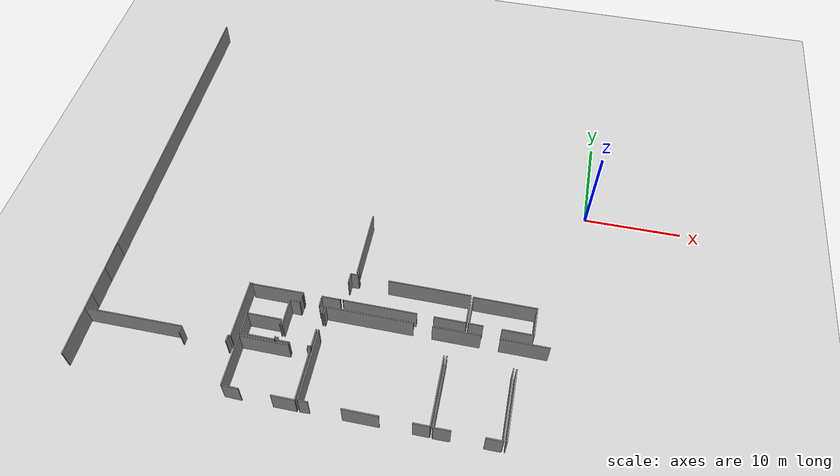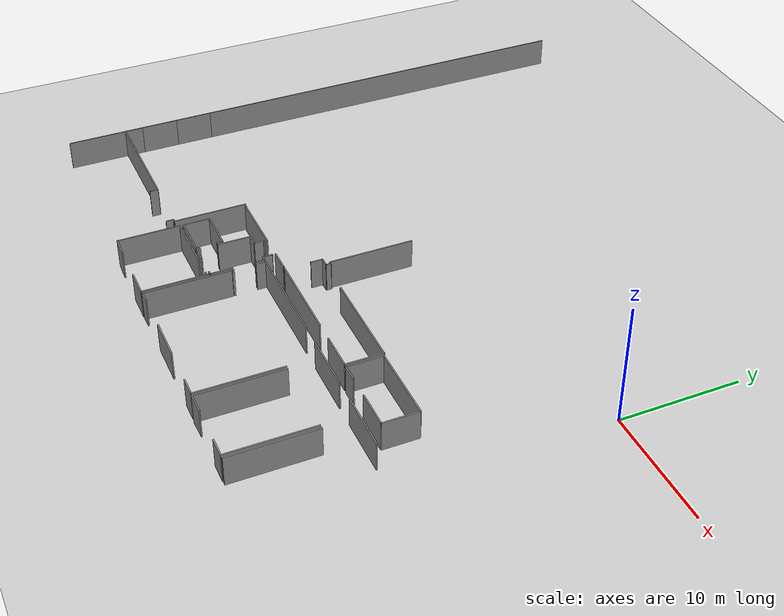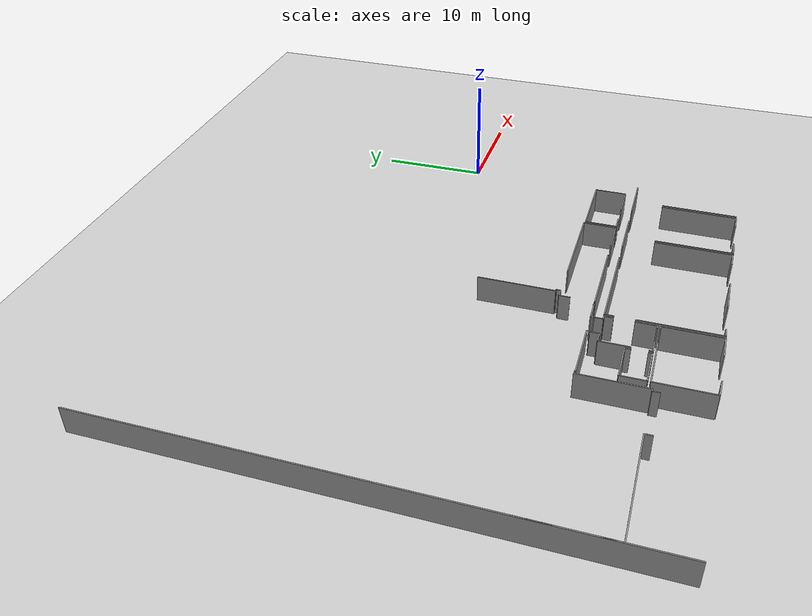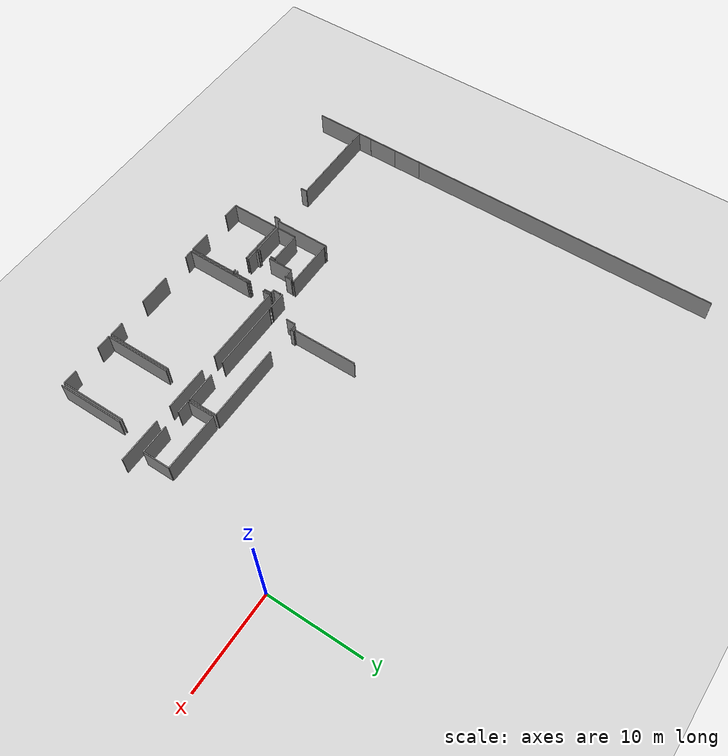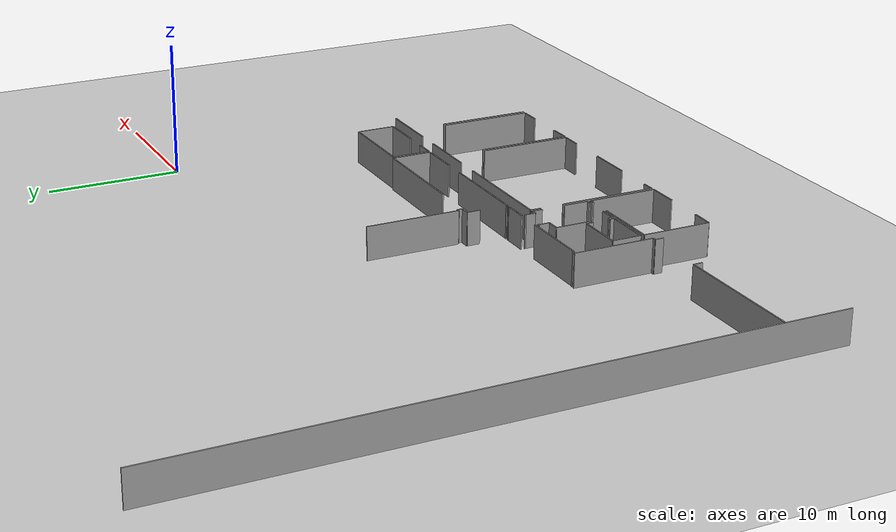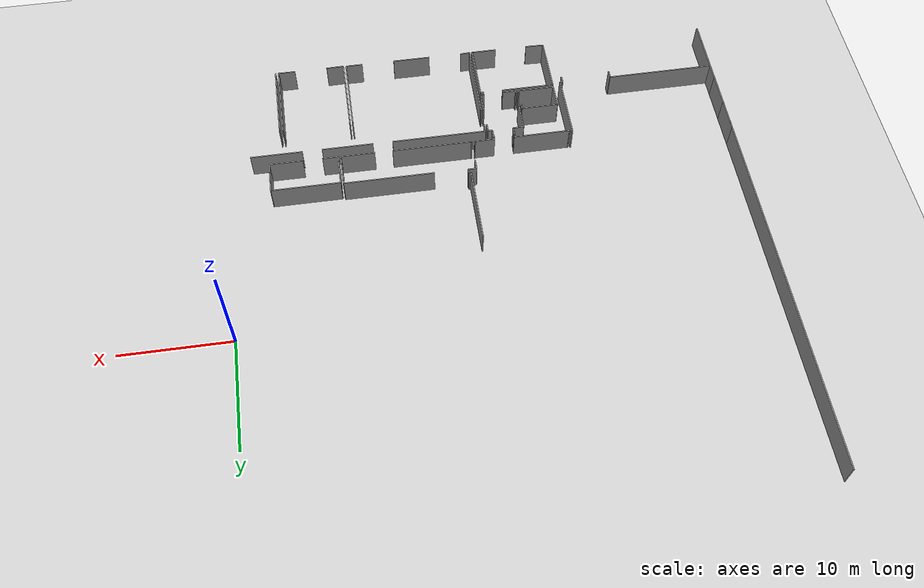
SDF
<sdf version="1.6">
 <world name="default">
  <model name="ground_plane">
   <static>1</static>
   <link name="link">
    <collision name="collision">
     <geometry><plane><normal>0 0 1</normal><size>100 100</size></plane></geometry>
     <surface><friction><ode><mu>100</mu><mu2>50</mu2></ode></friction></surface>
    </collision>
    <visual name="visual">
     <cast_shadows>0</cast_shadows>
     <geometry><plane><normal>0 0 1</normal><size>100 100</size></plane></geometry>
     <material>
      <script><uri>file://media/materials/scripts/gazebo.material</uri><name>Gazebo/Grey</name></script>
     </material>
    </visual>
   </link>
  </model>
  <model name="50045232">
   <static>1</static>
   <link name="Wall_110">
    <collision name="Wall_110_Collision">
     <geometry><box><size>1.52405143674 0.1 2.5</size></box></geometry>
     <pose>0.762025718368 0 1.25 0 0 0</pose>
    </collision>
    <visual name="Wall_110_Visual">
     <pose>0.762025718368 0 1.25 0 0 0</pose>
     <geometry><box><size>1.52405143674 0.1 2.5</size></box></geometry>
     <material>
      <script><uri>file://media/materials/scripts/gazebo.material</uri><name>Gazebo/Grey</name></script>
      <ambient>1 1 1 1</ambient>
     </material>
    </visual>
    <pose>0.00139704715034 -41.498904588 0 0 0 1.57079632679</pose>
   </link>
   <link name="Wall_111">
    <collision name="Wall_111_Collision">
     <geometry><box><size>3.1169391967 0.1 2.5</size></box></geometry>
     <pose>1.55846959835 0 1.25 0 0 0</pose>
    </collision>
    <visual name="Wall_111_Visual">
     <pose>1.55846959835 0 1.25 0 0 0</pose>
     <geometry><box><size>3.1169391967 0.1 2.5</size></box></geometry>
     <material>
      <script><uri>file://media/materials/scripts/gazebo.material</uri><name>Gazebo/Grey</name></script>
      <ambient>1 1 1 1</ambient>
     </material>
    </visual>
    <pose>0.00139704715034 -36.871376409 0 0 0 1.57079632679</pose>
   </link>
   <link name="Wall_128">
    <collision name="Wall_128_Collision">
     <geometry><box><size>6.02990950945 0.1 2.5</size></box></geometry>
     <pose>3.01495475472 0 1.25 0 0 0</pose>
    </collision>
    <visual name="Wall_128_Visual">
     <pose>3.01495475472 0 1.25 0 0 0</pose>
     <geometry><box><size>6.02990950945 0.1 2.5</size></box></geometry>
     <material>
      <script><uri>file://media/materials/scripts/gazebo.material</uri><name>Gazebo/Grey</name></script>
      <ambient>1 1 1 1</ambient>
     </material>
    </visual>
    <pose>14.7582790919 -35.4800444515 0 0 0 -1.57079632679</pose>
   </link>
   <link name="Wall_129">
    <collision name="Wall_129_Collision">
     <geometry><box><size>0.256421654231 0.1 2.5</size></box></geometry>
     <pose>0.128210827115 0 1.25 0 0 0</pose>
    </collision>
    <visual name="Wall_129_Visual">
     <pose>0.128210827115 0 1.25 0 0 0</pose>
     <geometry><box><size>0.256421654231 0.1 2.5</size></box></geometry>
     <material>
      <script><uri>file://media/materials/scripts/gazebo.material</uri><name>Gazebo/Grey</name></script>
      <ambient>1 1 1 1</ambient>
     </material>
    </visual>
    <pose>14.7582790919 -41.5099539609 0 0 0 3.14159265359</pose>
   </link>
   <link name="Wall_130">
    <collision name="Wall_130_Collision">
     <geometry><box><size>0.640609620575 0.1 2.5</size></box></geometry>
     <pose>0.320304810287 0 1.25 0 0 0</pose>
    </collision>
    <visual name="Wall_130_Visual">
     <pose>0.320304810287 0 1.25 0 0 0</pose>
     <geometry><box><size>0.640609620575 0.1 2.5</size></box></geometry>
     <material>
      <script><uri>file://media/materials/scripts/gazebo.material</uri><name>Gazebo/Grey</name></script>
      <ambient>1 1 1 1</ambient>
     </material>
    </visual>
    <pose>14.5018574377 -41.5099539609 0 0 0 -1.57079632679</pose>
   </link>
   <link name="Wall_131">
    <collision name="Wall_131_Collision">
     <geometry><box><size>0.686331163677 0.1 2.5</size></box></geometry>
     <pose>0.343165581838 0 1.25 0 0 0</pose>
    </collision>
    <visual name="Wall_131_Visual">
     <pose>0.343165581838 0 1.25 0 0 0</pose>
     <geometry><box><size>0.686331163677 0.1 2.5</size></box></geometry>
     <material>
      <script><uri>file://media/materials/scripts/gazebo.material</uri><name>Gazebo/Grey</name></script>
      <ambient>1 1 1 1</ambient>
     </material>
    </visual>
    <pose>9.8716621686 -42.1505635815 0 0 0 1.57079632679</pose>
   </link>
   <link name="Wall_132">
    <collision name="Wall_132_Collision">
     <geometry><box><size>9.87032601929 0.1 2.5</size></box></geometry>
     <pose>4.93516300964 0 1.25 0 0 0</pose>
    </collision>
    <visual name="Wall_132_Visual">
     <pose>4.93516300964 0 1.25 0 0 0</pose>
     <geometry><box><size>9.87032601929 0.1 2.5</size></box></geometry>
     <material>
      <script><uri>file://media/materials/scripts/gazebo.material</uri><name>Gazebo/Grey</name></script>
      <ambient>1 1 1 1</ambient>
     </material>
    </visual>
    <pose>9.8716621686 -41.4642324178 0 0 0 -3.13807987788</pose>
   </link>
   <link name="Wall_133">
    <collision name="Wall_133_Collision">
     <geometry><box><size>0.0989363391014 0.1 2.5</size></box></geometry>
     <pose>0.0494681695507 0 1.25 0 0 0</pose>
    </collision>
    <visual name="Wall_133_Visual">
     <pose>0.0494681695507 0 1.25 0 0 0</pose>
     <geometry><box><size>0.0989363391014 0.1 2.5</size></box></geometry>
     <material>
      <script><uri>file://media/materials/scripts/gazebo.material</uri><name>Gazebo/Grey</name></script>
      <ambient>1 1 1 1</ambient>
     </material>
    </visual>
    <pose>15.0116526433 -35.5975234164 0 0 0 1.57079632679</pose>
   </link>
   <link name="Wall_140">
    <collision name="Wall_140_Collision">
     <geometry><box><size>0.0863629147484 0.1 2.5</size></box></geometry>
     <pose>0.0431814573742 0 1.25 0 0 0</pose>
    </collision>
    <visual name="Wall_140_Visual">
     <pose>0.0431814573742 0 1.25 0 0 0</pose>
     <geometry><box><size>0.0863629147484 0.1 2.5</size></box></geometry>
     <material>
      <script><uri>file://media/materials/scripts/gazebo.material</uri><name>Gazebo/Grey</name></script>
      <ambient>1 1 1 1</ambient>
     </material>
    </visual>
    <pose>23.8978885537 -35.494014923 0 0 0 -1.57079632679</pose>
   </link>
   <link name="Wall_141">
    <collision name="Wall_141_Collision">
     <geometry><box><size>1.85350055564 0.1 2.5</size></box></geometry>
     <pose>0.926750277822 0 1.25 0 0 0</pose>
    </collision>
    <visual name="Wall_141_Visual">
     <pose>0.926750277822 0 1.25 0 0 0</pose>
     <geometry><box><size>1.85350055564 0.1 2.5</size></box></geometry>
     <material>
      <script><uri>file://media/materials/scripts/gazebo.material</uri><name>Gazebo/Grey</name></script>
      <ambient>1 1 1 1</ambient>
     </material>
    </visual>
    <pose>23.8978885537 -35.5803778378 0 0 0 3.14159265359</pose>
   </link>
   <link name="Wall_142">
    <collision name="Wall_142_Collision">
     <geometry><box><size>5.21101407753 0.1 2.5</size></box></geometry>
     <pose>2.60550703877 0 1.25 0 0 0</pose>
    </collision>
    <visual name="Wall_142_Visual">
     <pose>2.60550703877 0 1.25 0 0 0</pose>
     <geometry><box><size>5.21101407753 0.1 2.5</size></box></geometry>
     <material>
      <script><uri>file://media/materials/scripts/gazebo.material</uri><name>Gazebo/Grey</name></script>
      <ambient>1 1 1 1</ambient>
     </material>
    </visual>
    <pose>20.222638514 -35.5803778378 0 0 0 -3.13830239005</pose>
   </link>
   <link name="Wall_192">
    <collision name="Wall_192_Collision">
     <geometry><box><size>0.326655024607 0.1 2.5</size></box></geometry>
     <pose>0.163327512304 0 1.25 0 0 0</pose>
    </collision>
    <visual name="Wall_192_Visual">
     <pose>0.163327512304 0 1.25 0 0 0</pose>
     <geometry><box><size>0.326655024607 0.1 2.5</size></box></geometry>
     <material>
      <script><uri>file://media/materials/scripts/gazebo.material</uri><name>Gazebo/Grey</name></script>
      <ambient>1 1 1 1</ambient>
     </material>
    </visual>
    <pose>19.1518653755 -41.0429591999 0 0 0 1.57079632679</pose>
   </link>
   <link name="Wall_193">
    <collision name="Wall_193_Collision">
     <geometry><box><size>2.70125416733 0.1 2.5</size></box></geometry>
     <pose>1.35062708366 0 1.25 0 0 0</pose>
    </collision>
    <visual name="Wall_193_Visual">
     <pose>1.35062708366 0 1.25 0 0 0</pose>
     <geometry><box><size>2.70125416733 0.1 2.5</size></box></geometry>
     <material>
      <script><uri>file://media/materials/scripts/gazebo.material</uri><name>Gazebo/Grey</name></script>
      <ambient>1 1 1 1</ambient>
     </material>
    </visual>
    <pose>19.1518653755 -39.3365296079 0 0 0 1.57079632679</pose>
   </link>
   <link name="Wall_194">
    <collision name="Wall_194_Collision">
     <geometry><box><size>0.965740593745 0.1 2.5</size></box></geometry>
     <pose>0.482870296873 0 1.25 0 0 0</pose>
    </collision>
    <visual name="Wall_194_Visual">
     <pose>0.482870296873 0 1.25 0 0 0</pose>
     <geometry><box><size>0.965740593745 0.1 2.5</size></box></geometry>
     <material>
      <script><uri>file://media/materials/scripts/gazebo.material</uri><name>Gazebo/Grey</name></script>
      <ambient>1 1 1 1</ambient>
     </material>
    </visual>
    <pose>19.1518653755 -36.6352754405 0 0 0 0.0</pose>
   </link>
   <link name="Wall_195">
    <collision name="Wall_195_Collision">
     <geometry><box><size>0.784251468487 0.1 2.5</size></box></geometry>
     <pose>0.392125734244 0 1.25 0 0 0</pose>
    </collision>
    <visual name="Wall_195_Visual">
     <pose>0.392125734244 0 1.25 0 0 0</pose>
     <geometry><box><size>0.784251468487 0.1 2.5</size></box></geometry>
     <material>
      <script><uri>file://media/materials/scripts/gazebo.material</uri><name>Gazebo/Grey</name></script>
      <ambient>1 1 1 1</ambient>
     </material>
    </visual>
    <pose>20.1176059692 -36.6352754405 0 0 0 1.57079632679</pose>
   </link>
   <link name="Wall_196">
    <collision name="Wall_196_Collision">
     <geometry><box><size>0.108969677727 0.1 2.5</size></box></geometry>
     <pose>0.0544848388633 0 1.25 0 0 0</pose>
    </collision>
    <visual name="Wall_196_Visual">
     <pose>0.0544848388633 0 1.25 0 0 0</pose>
     <geometry><box><size>0.108969677727 0.1 2.5</size></box></geometry>
     <material>
      <script><uri>file://media/materials/scripts/gazebo.material</uri><name>Gazebo/Grey</name></script>
      <ambient>1 1 1 1</ambient>
     </material>
    </visual>
    <pose>20.1176059692 -35.8510239721 0 0 0 0.0</pose>
   </link>
   <link name="Wall_197">
    <collision name="Wall_197_Collision">
     <geometry><box><size>0.0835688204477 0.1 2.5</size></box></geometry>
     <pose>0.0417844102238 0 1.25 0 0 0</pose>
    </collision>
    <visual name="Wall_197_Visual">
     <pose>0.0417844102238 0 1.25 0 0 0</pose>
     <geometry><box><size>0.0835688204477 0.1 2.5</size></box></geometry>
     <material>
      <script><uri>file://media/materials/scripts/gazebo.material</uri><name>Gazebo/Grey</name></script>
      <ambient>1 1 1 1</ambient>
     </material>
    </visual>
    <pose>22.0113668836 -35.8510239721 0 0 0 0.0</pose>
   </link>
   <link name="Wall_198">
    <collision name="Wall_198_Collision">
     <geometry><box><size>0.777012224163 0.1 2.5</size></box></geometry>
     <pose>0.388506112081 0 1.25 0 0 0</pose>
    </collision>
    <visual name="Wall_198_Visual">
     <pose>0.388506112081 0 1.25 0 0 0</pose>
     <geometry><box><size>0.777012224163 0.1 2.5</size></box></geometry>
     <material>
      <script><uri>file://media/materials/scripts/gazebo.material</uri><name>Gazebo/Grey</name></script>
      <ambient>1 1 1 1</ambient>
     </material>
    </visual>
    <pose>22.0949357041 -35.8510239721 0 0 0 -1.57079632679</pose>
   </link>
   <link name="Wall_199">
    <collision name="Wall_199_Collision">
     <geometry><box><size>0.397142403556 0.1 2.5</size></box></geometry>
     <pose>0.198571201778 0 1.25 0 0 0</pose>
    </collision>
    <visual name="Wall_199_Visual">
     <pose>0.198571201778 0 1.25 0 0 0</pose>
     <geometry><box><size>0.397142403556 0.1 2.5</size></box></geometry>
     <material>
      <script><uri>file://media/materials/scripts/gazebo.material</uri><name>Gazebo/Grey</name></script>
      <ambient>1 1 1 1</ambient>
     </material>
    </visual>
    <pose>22.0949357041 -36.6280361962 0 0 0 0.0</pose>
   </link>
   <link name="Wall_200">
    <collision name="Wall_200_Collision">
     <geometry><box><size>0.787807588506 0.1 2.5</size></box></geometry>
     <pose>0.393903794253 0 1.25 0 0 0</pose>
    </collision>
    <visual name="Wall_200_Visual">
     <pose>0.393903794253 0 1.25 0 0 0</pose>
     <geometry><box><size>0.787807588506 0.1 2.5</size></box></geometry>
     <material>
      <script><uri>file://media/materials/scripts/gazebo.material</uri><name>Gazebo/Grey</name></script>
      <ambient>1 1 1 1</ambient>
     </material>
    </visual>
    <pose>22.4920781076 -36.6280361962 0 0 0 -1.57079632679</pose>
   </link>
   <link name="Wall_201">
    <collision name="Wall_201_Collision">
     <geometry><box><size>1.84346721702 0.1 2.5</size></box></geometry>
     <pose>0.921733608509 0 1.25 0 0 0</pose>
    </collision>
    <visual name="Wall_201_Visual">
     <pose>0.921733608509 0 1.25 0 0 0</pose>
     <geometry><box><size>1.84346721702 0.1 2.5</size></box></geometry>
     <material>
      <script><uri>file://media/materials/scripts/gazebo.material</uri><name>Gazebo/Grey</name></script>
      <ambient>1 1 1 1</ambient>
     </material>
    </visual>
    <pose>22.4920781076 -39.1819653913 0 0 0 -1.57079632679</pose>
   </link>
   <link name="Wall_202">
    <collision name="Wall_202_Collision">
     <geometry><box><size>0.342022543261 0.1 2.5</size></box></geometry>
     <pose>0.17101127163 0 1.25 0 0 0</pose>
    </collision>
    <visual name="Wall_202_Visual">
     <pose>0.17101127163 0 1.25 0 0 0</pose>
     <geometry><box><size>0.342022543261 0.1 2.5</size></box></geometry>
     <material>
      <script><uri>file://media/materials/scripts/gazebo.material</uri><name>Gazebo/Grey</name></script>
      <ambient>1 1 1 1</ambient>
     </material>
    </visual>
    <pose>22.4920781076 -41.0254326084 0 0 0 3.14159265359</pose>
   </link>
   <link name="Wall_203">
    <collision name="Wall_203_Collision">
     <geometry><box><size>1.24184459373 0.1 2.5</size></box></geometry>
     <pose>0.620922296865 0 1.25 0 0 0</pose>
    </collision>
    <visual name="Wall_203_Visual">
     <pose>0.620922296865 0 1.25 0 0 0</pose>
     <geometry><box><size>1.24184459373 0.1 2.5</size></box></geometry>
     <material>
      <script><uri>file://media/materials/scripts/gazebo.material</uri><name>Gazebo/Grey</name></script>
      <ambient>1 1 1 1</ambient>
     </material>
    </visual>
    <pose>20.3935862835 -41.0254326084 0 0 0 -3.12747883169</pose>
   </link>
   <link name="Wall_204">
    <collision name="Wall_204_Collision">
     <geometry><box><size>5.12233687887 0.1 2.5</size></box></geometry>
     <pose>2.56116843943 0 1.25 0 0 0</pose>
    </collision>
    <visual name="Wall_204_Visual">
     <pose>2.56116843943 0 1.25 0 0 0</pose>
     <geometry><box><size>5.12233687887 0.1 2.5</size></box></geometry>
     <material>
      <script><uri>file://media/materials/scripts/gazebo.material</uri><name>Gazebo/Grey</name></script>
      <ambient>1 1 1 1</ambient>
     </material>
    </visual>
    <pose>15.5159866645 -46.4137164629 0 0 0 1.57079632679</pose>
   </link>
   <link name="Wall_205">
    <collision name="Wall_205_Collision">
     <geometry><box><size>4.87036037466 0.1 2.5</size></box></geometry>
     <pose>2.43518018733 0 1.25 0 0 0</pose>
    </collision>
    <visual name="Wall_205_Visual">
     <pose>2.43518018733 0 1.25 0 0 0</pose>
     <geometry><box><size>4.87036037466 0.1 2.5</size></box></geometry>
     <material>
      <script><uri>file://media/materials/scripts/gazebo.material</uri><name>Gazebo/Grey</name></script>
      <ambient>1 1 1 1</ambient>
     </material>
    </visual>
    <pose>15.5159866645 -41.2913795841 0 0 0 0.0</pose>
   </link>
   <link name="Wall_206">
    <collision name="Wall_206_Collision">
     <geometry><box><size>0.331354183204 0.1 2.5</size></box></geometry>
     <pose>0.165677091602 0 1.25 0 0 0</pose>
    </collision>
    <visual name="Wall_206_Visual">
     <pose>0.165677091602 0 1.25 0 0 0</pose>
     <geometry><box><size>0.331354183204 0.1 2.5</size></box></geometry>
     <material>
      <script><uri>file://media/materials/scripts/gazebo.material</uri><name>Gazebo/Grey</name></script>
      <ambient>1 1 1 1</ambient>
     </material>
    </visual>
    <pose>22.1552627401 -41.2913795841 0 0 0 0.0</pose>
   </link>
   <link name="Wall_207">
    <collision name="Wall_207_Collision">
     <geometry><box><size>5.1761866963 0.1 2.5</size></box></geometry>
     <pose>2.58809334815 0 1.25 0 0 0</pose>
    </collision>
    <visual name="Wall_207_Visual">
     <pose>2.58809334815 0 1.25 0 0 0</pose>
     <geometry><box><size>5.1761866963 0.1 2.5</size></box></geometry>
     <material>
      <script><uri>file://media/materials/scripts/gazebo.material</uri><name>Gazebo/Grey</name></script>
      <ambient>1 1 1 1</ambient>
     </material>
    </visual>
    <pose>22.4866169233 -41.2913795841 0 0 0 -1.57079632679</pose>
   </link>
   <link name="Wall_208">
    <collision name="Wall_208_Collision">
     <geometry><box><size>2.27337672646 0.1 2.5</size></box></geometry>
     <pose>1.13668836323 0 1.25 0 0 0</pose>
    </collision>
    <visual name="Wall_208_Visual">
     <pose>1.13668836323 0 1.25 0 0 0</pose>
     <geometry><box><size>2.27337672646 0.1 2.5</size></box></geometry>
     <material>
      <script><uri>file://media/materials/scripts/gazebo.material</uri><name>Gazebo/Grey</name></script>
      <ambient>1 1 1 1</ambient>
     </material>
    </visual>
    <pose>22.4866169233 -46.4675662804 0 0 0 3.14159265359</pose>
   </link>
   <link name="Wall_209">
    <collision name="Wall_209_Collision">
     <geometry><box><size>1.67795591235 0.1 2.5</size></box></geometry>
     <pose>0.838977956177 0 1.25 0 0 0</pose>
    </collision>
    <visual name="Wall_209_Visual">
     <pose>0.838977956177 0 1.25 0 0 0</pose>
     <geometry><box><size>1.67795591235 0.1 2.5</size></box></geometry>
     <material>
      <script><uri>file://media/materials/scripts/gazebo.material</uri><name>Gazebo/Grey</name></script>
      <ambient>1 1 1 1</ambient>
     </material>
    </visual>
    <pose>17.1930782664 -46.4675662804 0 0 0 3.10949463188</pose>
   </link>
   <link name="Wall_210">
    <collision name="Wall_210_Collision">
     <geometry><box><size>2.18002857596 0.1 2.5</size></box></geometry>
     <pose>1.09001428798 0 1.25 0 0 0</pose>
    </collision>
    <visual name="Wall_210_Visual">
     <pose>1.09001428798 0 1.25 0 0 0</pose>
     <geometry><box><size>2.18002857596 0.1 2.5</size></box></geometry>
     <material>
      <script><uri>file://media/materials/scripts/gazebo.material</uri><name>Gazebo/Grey</name></script>
      <ambient>1 1 1 1</ambient>
     </material>
    </visual>
    <pose>15.523733926 -41.0159072869 0 0 0 1.57079632679</pose>
   </link>
   <link name="Wall_211">
    <collision name="Wall_211_Collision">
     <geometry><box><size>3.38034608668 0.1 2.5</size></box></geometry>
     <pose>1.69017304334 0 1.25 0 0 0</pose>
    </collision>
    <visual name="Wall_211_Visual">
     <pose>1.69017304334 0 1.25 0 0 0</pose>
     <geometry><box><size>3.38034608668 0.1 2.5</size></box></geometry>
     <material>
      <script><uri>file://media/materials/scripts/gazebo.material</uri><name>Gazebo/Grey</name></script>
      <ambient>1 1 1 1</ambient>
     </material>
    </visual>
    <pose>15.523733926 -38.8358787109 0 0 0 0.0</pose>
   </link>
   <link name="Wall_212">
    <collision name="Wall_212_Collision">
     <geometry><box><size>0.499380854104 0.1 2.5</size></box></geometry>
     <pose>0.249690427052 0 1.25 0 0 0</pose>
    </collision>
    <visual name="Wall_212_Visual">
     <pose>0.249690427052 0 1.25 0 0 0</pose>
     <geometry><box><size>0.499380854104 0.1 2.5</size></box></geometry>
     <material>
      <script><uri>file://media/materials/scripts/gazebo.material</uri><name>Gazebo/Grey</name></script>
      <ambient>1 1 1 1</ambient>
     </material>
    </visual>
    <pose>18.9040800127 -38.8358787109 0 0 0 -1.57079632679</pose>
   </link>
   <link name="Wall_213">
    <collision name="Wall_213_Collision">
     <geometry><box><size>0.326782028893 0.1 2.5</size></box></geometry>
     <pose>0.163391014447 0 1.25 0 0 0</pose>
    </collision>
    <visual name="Wall_213_Visual">
     <pose>0.163391014447 0 1.25 0 0 0</pose>
     <geometry><box><size>0.326782028893 0.1 2.5</size></box></geometry>
     <material>
      <script><uri>file://media/materials/scripts/gazebo.material</uri><name>Gazebo/Grey</name></script>
      <ambient>1 1 1 1</ambient>
     </material>
    </visual>
    <pose>18.9040800127 -40.694459438 0 0 0 -1.57079632679</pose>
   </link>
   <link name="Wall_214">
    <collision name="Wall_214_Collision">
     <geometry><box><size>3.38035029534 0.1 2.5</size></box></geometry>
     <pose>1.69017514767 0 1.25 0 0 0</pose>
    </collision>
    <visual name="Wall_214_Visual">
     <pose>1.69017514767 0 1.25 0 0 0</pose>
     <geometry><box><size>3.38035029534 0.1 2.5</size></box></geometry>
     <material>
      <script><uri>file://media/materials/scripts/gazebo.material</uri><name>Gazebo/Grey</name></script>
      <ambient>1 1 1 1</ambient>
     </material>
    </visual>
    <pose>18.9040800127 -41.0212414669 0 0 0 3.1400146567</pose>
   </link>
   <link name="Wall_215">
    <collision name="Wall_215_Collision">
     <geometry><box><size>0.165740593745 0.1 2.5</size></box></geometry>
     <pose>0.0828702968725 0 1.25 0 0 0</pose>
    </collision>
    <visual name="Wall_215_Visual">
     <pose>0.0828702968725 0 1.25 0 0 0</pose>
     <geometry><box><size>0.165740593745 0.1 2.5</size></box></geometry>
     <material>
      <script><uri>file://media/materials/scripts/gazebo.material</uri><name>Gazebo/Grey</name></script>
      <ambient>1 1 1 1</ambient>
     </material>
    </visual>
    <pose>22.7295761232 -39.3454199079 0 0 0 1.57079632679</pose>
   </link>
   <link name="Wall_216">
    <collision name="Wall_216_Collision">
     <geometry><box><size>0.798729957136 0.1 2.5</size></box></geometry>
     <pose>0.399364978568 0 1.25 0 0 0</pose>
    </collision>
    <visual name="Wall_216_Visual">
     <pose>0.399364978568 0 1.25 0 0 0</pose>
     <geometry><box><size>0.798729957136 0.1 2.5</size></box></geometry>
     <material>
      <script><uri>file://media/materials/scripts/gazebo.material</uri><name>Gazebo/Grey</name></script>
      <ambient>1 1 1 1</ambient>
     </material>
    </visual>
    <pose>22.7295761232 -37.419526909 0 0 0 1.57079632679</pose>
   </link>
   <link name="Wall_217">
    <collision name="Wall_217_Collision">
     <geometry><box><size>8.65889823782 0.1 2.5</size></box></geometry>
     <pose>4.32944911891 0 1.25 0 0 0</pose>
    </collision>
    <visual name="Wall_217_Visual">
     <pose>4.32944911891 0 1.25 0 0 0</pose>
     <geometry><box><size>8.65889823782 0.1 2.5</size></box></geometry>
     <material>
      <script><uri>file://media/materials/scripts/gazebo.material</uri><name>Gazebo/Grey</name></script>
      <ambient>1 1 1 1</ambient>
     </material>
    </visual>
    <pose>22.7295761232 -36.6207969519 0 0 0 0.0</pose>
   </link>
   <link name="Wall_218">
    <collision name="Wall_218_Collision">
     <geometry><box><size>4.693570408 0.1 2.5</size></box></geometry>
     <pose>2.346785204 0 1.25 0 0 0</pose>
    </collision>
    <visual name="Wall_218_Visual">
     <pose>2.346785204 0 1.25 0 0 0</pose>
     <geometry><box><size>4.693570408 0.1 2.5</size></box></geometry>
     <material>
      <script><uri>file://media/materials/scripts/gazebo.material</uri><name>Gazebo/Grey</name></script>
      <ambient>1 1 1 1</ambient>
     </material>
    </visual>
    <pose>33.1991744721 -36.6207969519 0 0 0 0.0</pose>
   </link>
   <link name="Wall_219">
    <collision name="Wall_219_Collision">
     <geometry><box><size>4.73725988252 0.1 2.5</size></box></geometry>
     <pose>2.36862994126 0 1.25 0 0 0</pose>
    </collision>
    <visual name="Wall_219_Visual">
     <pose>2.36862994126 0 1.25 0 0 0</pose>
     <geometry><box><size>4.73725988252 0.1 2.5</size></box></geometry>
     <material>
      <script><uri>file://media/materials/scripts/gazebo.material</uri><name>Gazebo/Grey</name></script>
      <ambient>1 1 1 1</ambient>
     </material>
    </visual>
    <pose>39.6956977298 -36.6207969519 0 0 0 0.0</pose>
   </link>
   <link name="Wall_228">
    <collision name="Wall_228_Collision">
     <geometry><box><size>7.07159866646 0.1 2.5</size></box></geometry>
     <pose>3.53579933323 0 1.25 0 0 0</pose>
    </collision>
    <visual name="Wall_228_Visual">
     <pose>3.53579933323 0 1.25 0 0 0</pose>
     <geometry><box><size>7.07159866646 0.1 2.5</size></box></geometry>
     <material>
      <script><uri>file://media/materials/scripts/gazebo.material</uri><name>Gazebo/Grey</name></script>
      <ambient>1 1 1 1</ambient>
     </material>
    </visual>
    <pose>22.7533259247 -46.4548658517 0 0 0 1.57079632679</pose>
   </link>
   <link name="Wall_229">
    <collision name="Wall_229_Collision">
     <geometry><box><size>7.03324337196 0.1 2.5</size></box></geometry>
     <pose>3.51662168598 0 1.25 0 0 0</pose>
    </collision>
    <visual name="Wall_229_Visual">
     <pose>3.51662168598 0 1.25 0 0 0</pose>
     <geometry><box><size>7.03324337196 0.1 2.5</size></box></geometry>
     <material>
      <script><uri>file://media/materials/scripts/gazebo.material</uri><name>Gazebo/Grey</name></script>
      <ambient>1 1 1 1</ambient>
     </material>
    </visual>
    <pose>34.822162248 -39.3832671853 0 0 0 -1.57079632679</pose>
   </link>
   <link name="Wall_230">
    <collision name="Wall_230_Collision">
     <geometry><box><size>1.56850293697 0.1 2.5</size></box></geometry>
     <pose>0.784251468487 0 1.25 0 0 0</pose>
    </collision>
    <visual name="Wall_230_Visual">
     <pose>0.784251468487 0 1.25 0 0 0</pose>
     <geometry><box><size>1.56850293697 0.1 2.5</size></box></geometry>
     <material>
      <script><uri>file://media/materials/scripts/gazebo.material</uri><name>Gazebo/Grey</name></script>
      <ambient>1 1 1 1</ambient>
     </material>
    </visual>
    <pose>34.822162248 -46.4165105572 0 0 0 3.14159265359</pose>
   </link>
   <link name="Wall_231">
    <collision name="Wall_231_Collision">
     <geometry><box><size>3.46366089856 0.1 2.5</size></box></geometry>
     <pose>1.73183044928 0 1.25 0 0 0</pose>
    </collision>
    <visual name="Wall_231_Visual">
     <pose>1.73183044928 0 1.25 0 0 0</pose>
     <geometry><box><size>3.46366089856 0.1 2.5</size></box></geometry>
     <material>
      <script><uri>file://media/materials/scripts/gazebo.material</uri><name>Gazebo/Grey</name></script>
      <ambient>1 1 1 1</ambient>
     </material>
    </visual>
    <pose>30.2037783775 -46.4165105572 0 0 0 3.14159265359</pose>
   </link>
   <link name="Wall_232">
    <collision name="Wall_232_Collision">
     <geometry><box><size>0.923229206057 0.1 2.5</size></box></geometry>
     <pose>0.461614603029 0 1.25 0 0 0</pose>
    </collision>
    <visual name="Wall_232_Visual">
     <pose>0.461614603029 0 1.25 0 0 0</pose>
     <geometry><box><size>0.923229206057 0.1 2.5</size></box></geometry>
     <material>
      <script><uri>file://media/materials/scripts/gazebo.material</uri><name>Gazebo/Grey</name></script>
      <ambient>1 1 1 1</ambient>
     </material>
    </visual>
    <pose>23.6757580568 -46.4165105572 0 0 0 -3.10003597826</pose>
   </link>
   <link name="Wall_233">
    <collision name="Wall_233_Collision">
     <geometry><box><size>7.07159866646 0.1 2.5</size></box></geometry>
     <pose>3.53579933323 0 1.25 0 0 0</pose>
    </collision>
    <visual name="Wall_233_Visual">
     <pose>3.53579933323 0 1.25 0 0 0</pose>
     <geometry><box><size>7.07159866646 0.1 2.5</size></box></geometry>
     <material>
      <script><uri>file://media/materials/scripts/gazebo.material</uri><name>Gazebo/Grey</name></script>
      <ambient>1 1 1 1</ambient>
     </material>
    </visual>
    <pose>35.0854421337 -46.4548658517 0 0 0 1.57079632679</pose>
   </link>
   <link name="Wall_234">
    <collision name="Wall_234_Collision">
     <geometry><box><size>7.04302270202 0.1 2.5</size></box></geometry>
     <pose>3.52151135101 0 1.25 0 0 0</pose>
    </collision>
    <visual name="Wall_234_Visual">
     <pose>3.52151135101 0 1.25 0 0 0</pose>
     <geometry><box><size>7.04302270202 0.1 2.5</size></box></geometry>
     <material>
      <script><uri>file://media/materials/scripts/gazebo.material</uri><name>Gazebo/Grey</name></script>
      <ambient>1 1 1 1</ambient>
     </material>
    </visual>
    <pose>41.313986347 -39.3832671853 0 0 0 -1.57079632679</pose>
   </link>
   <link name="Wall_235">
    <collision name="Wall_235_Collision">
     <geometry><box><size>1.57396412129 0.1 2.5</size></box></geometry>
     <pose>0.786982060645 0 1.25 0 0 0</pose>
    </collision>
    <visual name="Wall_235_Visual">
     <pose>0.786982060645 0 1.25 0 0 0</pose>
     <geometry><box><size>1.57396412129 0.1 2.5</size></box></geometry>
     <material>
      <script><uri>file://media/materials/scripts/gazebo.material</uri><name>Gazebo/Grey</name></script>
      <ambient>1 1 1 1</ambient>
     </material>
    </visual>
    <pose>41.313986347 -46.4262898873 0 0 0 3.14159265359</pose>
   </link>
   <link name="Wall_236">
    <collision name="Wall_236_Collision">
     <geometry><box><size>1.61511231664 0.1 2.5</size></box></geometry>
     <pose>0.807556158319 0 1.25 0 0 0</pose>
    </collision>
    <visual name="Wall_236_Visual">
     <pose>0.807556158319 0 1.25 0 0 0</pose>
     <geometry><box><size>1.61511231664 0.1 2.5</size></box></geometry>
     <material>
      <script><uri>file://media/materials/scripts/gazebo.material</uri><name>Gazebo/Grey</name></script>
      <ambient>1 1 1 1</ambient>
     </material>
    </visual>
    <pose>36.7003016352 -46.4262898873 0 0 0 -3.12389886521</pose>
   </link>
   <link name="Wall_237">
    <collision name="Wall_237_Collision">
     <geometry><box><size>7.06804254644 0.1 2.5</size></box></geometry>
     <pose>3.53402127322 0 1.25 0 0 0</pose>
    </collision>
    <visual name="Wall_237_Visual">
     <pose>3.53402127322 0 1.25 0 0 0</pose>
     <geometry><box><size>7.06804254644 0.1 2.5</size></box></geometry>
     <material>
      <script><uri>file://media/materials/scripts/gazebo.material</uri><name>Gazebo/Grey</name></script>
      <ambient>1 1 1 1</ambient>
     </material>
    </visual>
    <pose>41.6160025401 -46.4417844102 0 0 0 1.57079632679</pose>
   </link>
   <link name="Wall_310">
    <collision name="Wall_310_Collision">
     <geometry><box><size>3.06474043499 0.1 2.5</size></box></geometry>
     <pose>1.53237021749 0 1.25 0 0 0</pose>
    </collision>
    <visual name="Wall_310_Visual">
     <pose>1.53237021749 0 1.25 0 0 0</pose>
     <geometry><box><size>3.06474043499 0.1 2.5</size></box></geometry>
     <material>
      <script><uri>file://media/materials/scripts/gazebo.material</uri><name>Gazebo/Grey</name></script>
      <ambient>1 1 1 1</ambient>
     </material>
    </visual>
    <pose>42.7797428163 -35.5871090649 0 0 0 3.14159265359</pose>
   </link>
   <link name="Wall_311">
    <collision name="Wall_311_Collision">
     <geometry><box><size>1.41355770757 0.1 2.5</size></box></geometry>
     <pose>0.706778853786 0 1.25 0 0 0</pose>
    </collision>
    <visual name="Wall_311_Visual">
     <pose>0.706778853786 0 1.25 0 0 0</pose>
     <geometry><box><size>1.41355770757 0.1 2.5</size></box></geometry>
     <material>
      <script><uri>file://media/materials/scripts/gazebo.material</uri><name>Gazebo/Grey</name></script>
      <ambient>1 1 1 1</ambient>
     </material>
    </visual>
    <pose>37.9369423718 -35.5871090649 0 0 0 3.14159265359</pose>
   </link>
   <link name="Wall_312">
    <collision name="Wall_312_Collision">
     <geometry><box><size>2.93240196857 0.1 2.5</size></box></geometry>
     <pose>1.46620098428 0 1.25 0 0 0</pose>
    </collision>
    <visual name="Wall_312_Visual">
     <pose>1.46620098428 0 1.25 0 0 0</pose>
     <geometry><box><size>2.93240196857 0.1 2.5</size></box></geometry>
     <material>
      <script><uri>file://media/materials/scripts/gazebo.material</uri><name>Gazebo/Grey</name></script>
      <ambient>1 1 1 1</ambient>
     </material>
    </visual>
    <pose>36.5233846642 -35.5871090649 0 0 0 1.57079632679</pose>
   </link>
   <link name="Wall_313">
    <collision name="Wall_313_Collision">
     <geometry><box><size>6.25800920781 0.1 2.5</size></box></geometry>
     <pose>3.12900460391 0 1.25 0 0 0</pose>
    </collision>
    <visual name="Wall_313_Visual">
     <pose>3.12900460391 0 1.25 0 0 0</pose>
     <geometry><box><size>6.25800920781 0.1 2.5</size></box></geometry>
     <material>
      <script><uri>file://media/materials/scripts/gazebo.material</uri><name>Gazebo/Grey</name></script>
      <ambient>1 1 1 1</ambient>
     </material>
    </visual>
    <pose>36.5233846642 -32.6547070964 0 0 0 0.0</pose>
   </link>
   <link name="Wall_314">
    <collision name="Wall_314_Collision">
     <geometry><box><size>2.93240243337 0.1 2.5</size></box></geometry>
     <pose>1.46620121669 0 1.25 0 0 0</pose>
    </collision>
    <visual name="Wall_314_Visual">
     <pose>1.46620121669 0 1.25 0 0 0</pose>
     <geometry><box><size>2.93240243337 0.1 2.5</size></box></geometry>
     <material>
      <script><uri>file://media/materials/scripts/gazebo.material</uri><name>Gazebo/Grey</name></script>
      <ambient>1 1 1 1</ambient>
     </material>
    </visual>
    <pose>42.781393872 -32.6547070964 0 0 0 -1.57135936541</pose>
   </link>
   <link name="Wall_315">
    <collision name="Wall_315_Collision">
     <geometry><box><size>3.12875059533 0.1 2.5</size></box></geometry>
     <pose>1.56437529767 0 1.25 0 0 0</pose>
    </collision>
    <visual name="Wall_315_Visual">
     <pose>1.56437529767 0 1.25 0 0 0</pose>
     <geometry><box><size>3.12875059533 0.1 2.5</size></box></geometry>
     <material>
      <script><uri>file://media/materials/scripts/gazebo.material</uri><name>Gazebo/Grey</name></script>
      <ambient>1 1 1 1</ambient>
     </material>
    </visual>
    <pose>36.2744562629 -35.578726782 0 0 0 3.14159265359</pose>
   </link>
   <link name="Wall_316">
    <collision name="Wall_316_Collision">
     <geometry><box><size>7.30300047627 0.1 2.5</size></box></geometry>
     <pose>3.65150023813 0 1.25 0 0 0</pose>
    </collision>
    <visual name="Wall_316_Visual">
     <pose>3.65150023813 0 1.25 0 0 0</pose>
     <geometry><box><size>7.30300047627 0.1 2.5</size></box></geometry>
     <material>
      <script><uri>file://media/materials/scripts/gazebo.material</uri><name>Gazebo/Grey</name></script>
      <ambient>1 1 1 1</ambient>
     </material>
    </visual>
    <pose>31.5062073345 -35.578726782 0 0 0 3.14159265359</pose>
   </link>
   <link name="Wall_317">
    <collision name="Wall_317_Collision">
     <geometry><box><size>0.0690903317987 0.1 2.5</size></box></geometry>
     <pose>0.0345451658994 0 1.25 0 0 0</pose>
    </collision>
    <visual name="Wall_317_Visual">
     <pose>0.0345451658994 0 1.25 0 0 0</pose>
     <geometry><box><size>0.0690903317987 0.1 2.5</size></box></geometry>
     <material>
      <script><uri>file://media/materials/scripts/gazebo.material</uri><name>Gazebo/Grey</name></script>
      <ambient>1 1 1 1</ambient>
     </material>
    </visual>
    <pose>24.2032068582 -35.578726782 0 0 0 1.57079632679</pose>
   </link>
   <link name="Wall_318">
    <collision name="Wall_318_Collision">
     <geometry><box><size>0.980092078108 0.1 2.5</size></box></geometry>
     <pose>0.490046039054 0 1.25 0 0 0</pose>
    </collision>
    <visual name="Wall_318_Visual">
     <pose>0.490046039054 0 1.25 0 0 0</pose>
     <geometry><box><size>0.980092078108 0.1 2.5</size></box></geometry>
     <material>
      <script><uri>file://media/materials/scripts/gazebo.material</uri><name>Gazebo/Grey</name></script>
      <ambient>1 1 1 1</ambient>
     </material>
    </visual>
    <pose>24.2032068582 -33.4676615336 0 0 0 1.57079632679</pose>
   </link>
   <link name="Wall_319">
    <collision name="Wall_319_Collision">
     <geometry><box><size>0.748690268297 0.1 2.5</size></box></geometry>
     <pose>0.374345134148 0 1.25 0 0 0</pose>
    </collision>
    <visual name="Wall_319_Visual">
     <pose>0.374345134148 0 1.25 0 0 0</pose>
     <geometry><box><size>0.748690268297 0.1 2.5</size></box></geometry>
     <material>
      <script><uri>file://media/materials/scripts/gazebo.material</uri><name>Gazebo/Grey</name></script>
      <ambient>1 1 1 1</ambient>
     </material>
    </visual>
    <pose>24.2032068582 -32.4875694555 0 0 0 0.0</pose>
   </link>
   <link name="Wall_320">
    <collision name="Wall_320_Collision">
     <geometry><box><size>0.391046197809 0.1 2.5</size></box></geometry>
     <pose>0.195523098905 0 1.25 0 0 0</pose>
    </collision>
    <visual name="Wall_320_Visual">
     <pose>0.195523098905 0 1.25 0 0 0</pose>
     <geometry><box><size>0.391046197809 0.1 2.5</size></box></geometry>
     <material>
      <script><uri>file://media/materials/scripts/gazebo.material</uri><name>Gazebo/Grey</name></script>
      <ambient>1 1 1 1</ambient>
     </material>
    </visual>
    <pose>24.9518971265 -32.4875694555 0 0 0 1.57079632679</pose>
   </link>
   <link name="Wall_321">
    <collision name="Wall_321_Collision">
     <geometry><box><size>0.184791236704 0.1 2.5</size></box></geometry>
     <pose>0.0923956183521 0 1.25 0 0 0</pose>
    </collision>
    <visual name="Wall_321_Visual">
     <pose>0.0923956183521 0 1.25 0 0 0</pose>
     <geometry><box><size>0.184791236704 0.1 2.5</size></box></geometry>
     <material>
      <script><uri>file://media/materials/scripts/gazebo.material</uri><name>Gazebo/Grey</name></script>
      <ambient>1 1 1 1</ambient>
     </material>
    </visual>
    <pose>24.9518971265 -32.0965232577 0 0 0 3.14159265359</pose>
   </link>
   <link name="Wall_322">
    <collision name="Wall_322_Collision">
     <geometry><box><size>6.95627877441 0.1 2.5</size></box></geometry>
     <pose>3.4781393872 0 1.25 0 0 0</pose>
    </collision>
    <visual name="Wall_322_Visual">
     <pose>3.4781393872 0 1.25 0 0 0</pose>
     <geometry><box><size>6.95627877441 0.1 2.5</size></box></geometry>
     <material>
      <script><uri>file://media/materials/scripts/gazebo.material</uri><name>Gazebo/Grey</name></script>
      <ambient>1 1 1 1</ambient>
     </material>
    </visual>
    <pose>24.7671058898 -32.0965232577 0 0 0 1.57079632679</pose>
   </link>
   <link name="Wall_324">
    <collision name="Wall_324_Collision">
     <geometry><box><size>8.22416256549 0.1 2.5</size></box></geometry>
     <pose>4.11208128274 0 1.25 0 0 0</pose>
    </collision>
    <visual name="Wall_324_Visual">
     <pose>4.11208128274 0 1.25 0 0 0</pose>
     <geometry><box><size>8.22416256549 0.1 2.5</size></box></geometry>
     <material>
      <script><uri>file://media/materials/scripts/gazebo.material</uri><name>Gazebo/Grey</name></script>
      <ambient>1 1 1 1</ambient>
     </material>
    </visual>
    <pose>28.0424194317 -32.5351960629 0 0 0 0.0</pose>
   </link>
   <link name="Wall_325">
    <collision name="Wall_325_Collision">
     <geometry><box><size>3.04354090535 0.1 2.5</size></box></geometry>
     <pose>1.52177045268 0 1.25 0 0 0</pose>
    </collision>
    <visual name="Wall_325_Visual">
     <pose>1.52177045268 0 1.25 0 0 0</pose>
     <geometry><box><size>3.04354090535 0.1 2.5</size></box></geometry>
     <material>
      <script><uri>file://media/materials/scripts/gazebo.material</uri><name>Gazebo/Grey</name></script>
      <ambient>1 1 1 1</ambient>
     </material>
    </visual>
    <pose>36.2665819971 -32.5351960629 0 0 0 -1.56820911841</pose>
   </link>
   <link name="Wall_393">
    <collision name="Wall_393_Collision">
     <geometry><box><size>46.4701063661 0.1 2.5</size></box></geometry>
     <pose>23.235053183 0 1.25 0 0 0</pose>
    </collision>
    <visual name="Wall_393_Visual">
     <pose>23.235053183 0 1.25 0 0 0</pose>
     <geometry><box><size>46.4701063661 0.1 2.5</size></box></geometry>
     <material>
      <script><uri>file://media/materials/scripts/gazebo.material</uri><name>Gazebo/Grey</name></script>
      <ambient>1 1 1 1</ambient>
     </material>
    </visual>
    <pose>0.0 -46.4701063661 0 0 0 1.57079632679</pose>
   </link>
   <pose>-46.75 19.2201063661 0 0 0 0</pose>
  </model>
 </world>
</sdf>
